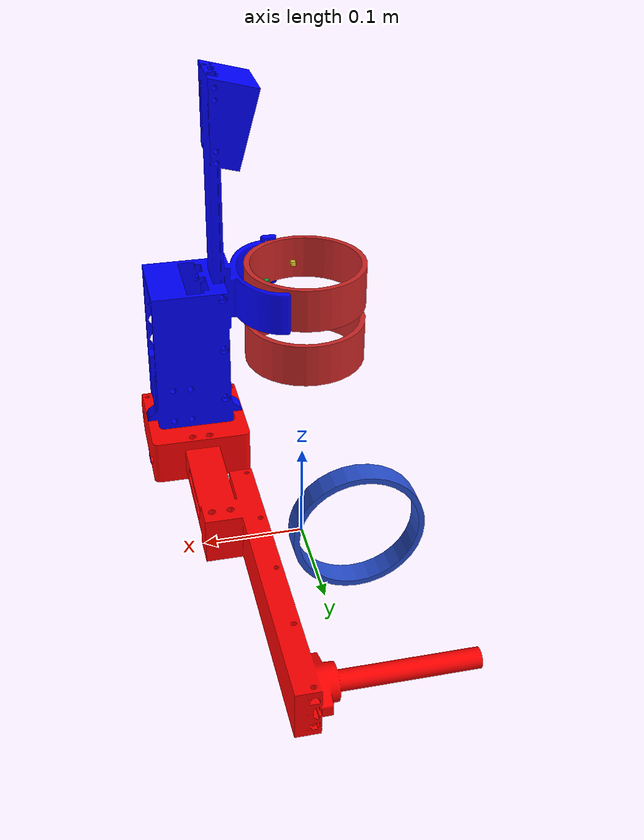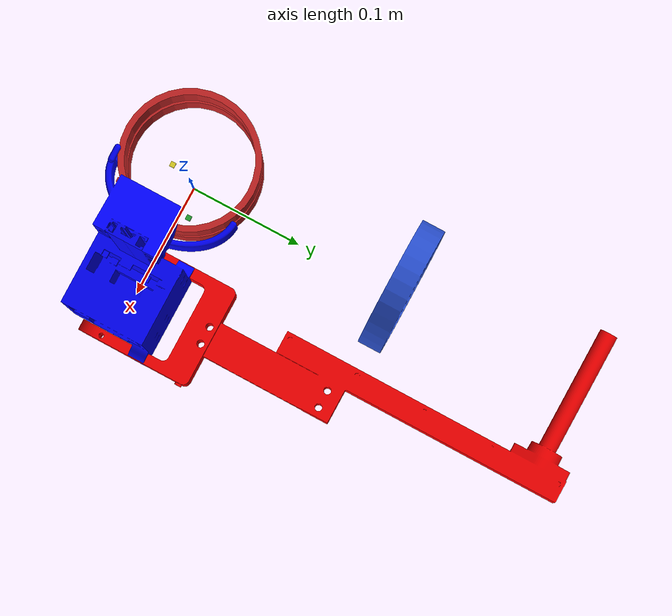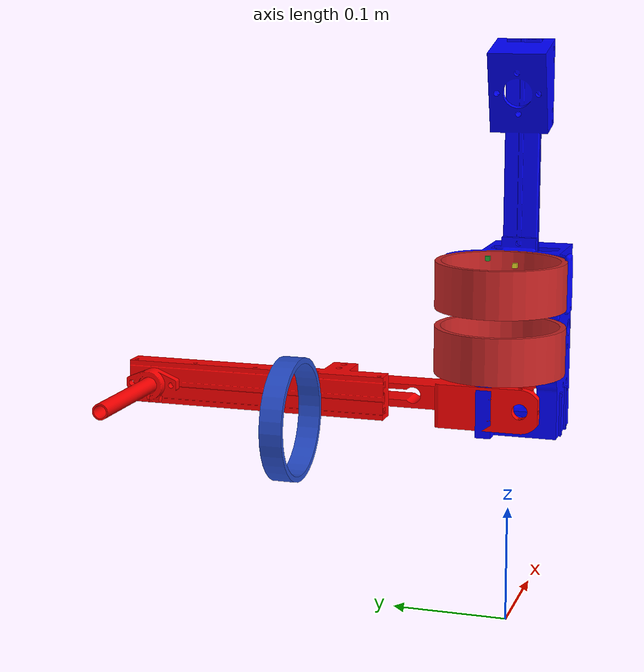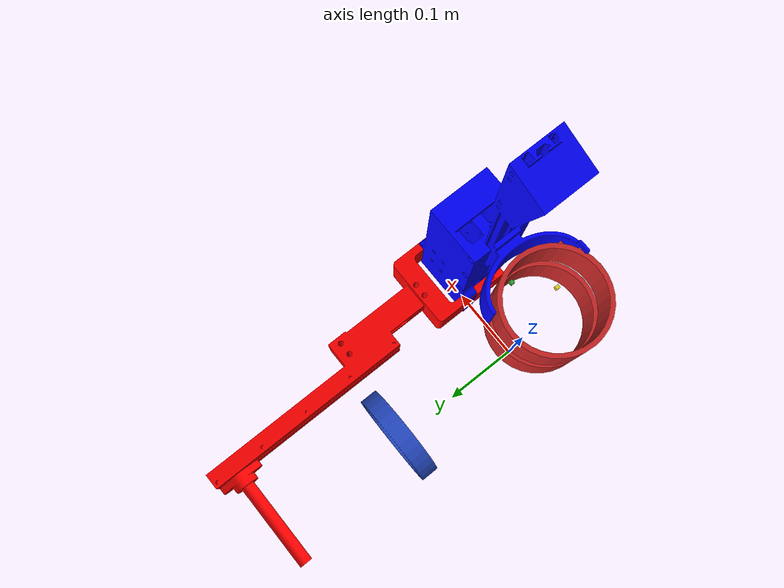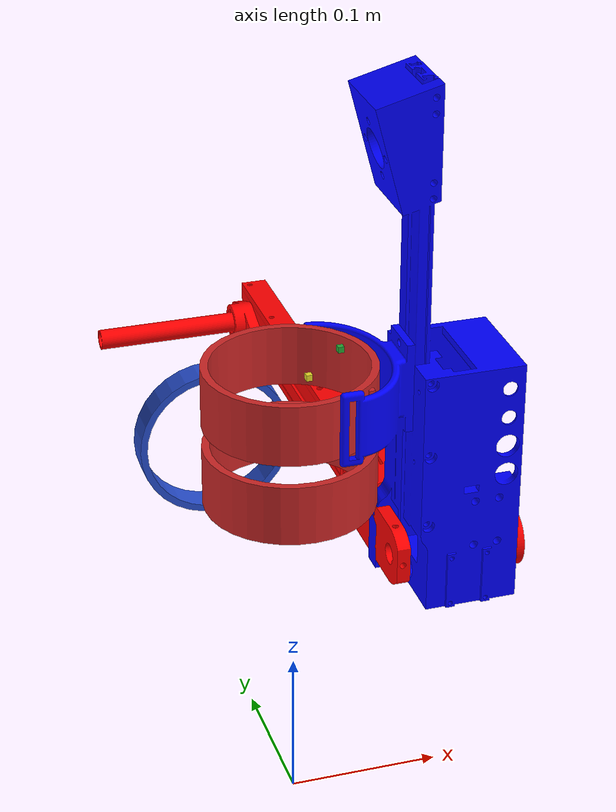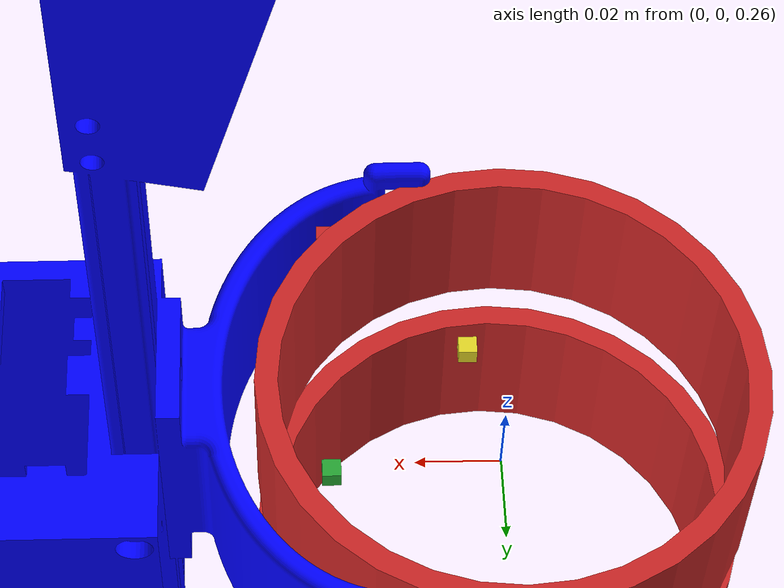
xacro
<?xml version="1.0"?>
<robot name="upper_limb" xmlns:xacro="http://www.ros.org/wiki/xacro">

  <!-- Import all Gazebo-customization elements, including Gazebo colors -->
  <xacro:include filename="$(find wearable_robot_description)/urdf/upper_limb.gazebo"/>
  <!-- Import Rviz colors -->
  <xacro:include filename="$(find wearable_robot_description)/urdf/materials.xacro"/>

    <link name="world"/>

    <joint name="fixed" type="fixed">
      <parent link="world"/>
      <child link="arm_link"/>
    </joint>

    <link name="arm_link">
      <visual>
        <geometry>
          <mesh filename="$(find wearable_robot_description)/meshes/upper_limb/arm_link.dae" scale="0.001 0.001 0.001"/>
        </geometry>
        <origin rpy="-3.141592 -1.570796 0" xyz="0.1 -0.05 0.00"/>
        <material name="blue">
          <color rgba="0 0 1 1"/>
        </material>
      </visual>
      <inertial>
        <mass value="0.1"/>
        <inertia ixx="1.0" ixy="0.0" ixz="0.0" iyy="1.0" iyz="0.0" izz="1.0"/>
      </inertial>
    </link>

    <joint name="arm_joint" type="revolute">
        <parent link="arm_link"/>
        <child link="forearm_link"/>
        <origin xyz="0 0 0.1575"/>
        <axis xyz="0 0 0" />
        <limit effort="500" velocity="100" lower="-4.1" upper="-1.570796"/>
        <dynamics damping="1" friction="1"/>
    </joint>

    <link name="forearm_link">
        <visual>
            <geometry>
                <mesh filename="$(find wearable_robot_description)/meshes/upper_limb/forearm_link.dae" scale="0.001 0.001 0.001"/>
            </geometry>
            <origin rpy="-1.570796 0 -1.570796" xyz="0.10 0.1575 -0.05"/>
            <material name="red">
                <color rgba="1 0 0 1"/>
            </material>
        </visual>
        <inertial>
            <mass value="0.1"/>
            <inertia ixx="1.0" ixy="0.0" ixz="0.0" iyy="1.0" iyz="0.0" izz="1.0"/>
        </inertial>
    </link>

    <joint name="forearm_band_link_fix_to_forearm_link" type="fixed">
      <origin xyz="0.0 0.22 0" rpy="0 1.570796 0"/>
      <parent link="forearm_link"/>
      <child link="forearm_band_link"/>
    </joint>

    <link name="forearm_band_link">
      <visual>
        <geometry>
          <mesh filename="$(find wearable_robot_description)/meshes/pipe.dae" scale="0.050 0.050 0.01"/>
        </geometry>
        <origin rpy="1.570796 1.570796 0" xyz="-0.0050 -0.025 0.0"/>
      </visual>
      <collision>
        <geometry>
          <mesh filename="$(find wearable_robot_description)/meshes/pipe.dae" scale="0.060 0.055 0.01"/>
        </geometry>
        <origin rpy="1.570796 1.570796 0" xyz="-0.0050 -0.025 0.0"/>
      </collision>

      <inertial>
        <mass value="0.001"/>
        <inertia ixx="1e-2" iyy="1e-2" izz="1e-2" ixy="0" ixz="0" iyz="0"/>
      </inertial>
    </link>

    <joint name="arm_band_link_to_arm_link" type="fixed">
      <origin xyz="0.05 -0.05 0.2875" rpy="0 0 1.570796"/>
      <axis xyz="0 0 0" />
      <parent link="arm_link"/>
      <child link="arm_band_link"/>
    </joint>

    <link name="arm_band_link">
      <visual>
        <geometry>
          <mesh filename="$(find wearable_robot_description)/meshes/pipe.dae" scale="0.05 0.05 0.02"/>
        </geometry>
          <!-- x up dir, y left dir, z is z dir -->
        <origin rpy="0 0 0" xyz="0.06 0.049 0.005"/>
      </visual>

      <collision>
        <geometry>
          <mesh filename="$(find wearable_robot_description)/meshes/pipe.dae" scale="0.045 0.045 0.02"/>
        </geometry>
        <origin rpy="0 0 0" xyz="0.06 0.049 0.005"/>
      </collision>

      <visual>
        <geometry>
          <mesh filename="$(find wearable_robot_description)/meshes/pipe.dae" scale="0.05 0.05 0.02"/>
        </geometry>
        <origin rpy="0 0 0" xyz="0.06 0.049 -0.05"/>
      </visual>

      <collision>
        <geometry>
          <mesh filename="$(find wearable_robot_description)/meshes/pipe.dae" scale="0.045 0.045 0.02"/>
        </geometry>
        <origin rpy="0 0 0" xyz="0.06 0.049 -0.05"/>
      </collision>

      <inertial>
        <mass value="0.001"/>
        <inertia ixx="1e-2" iyy="1e-2" izz="1e-2" ixy="0" ixz="0" iyz="0"/>
      </inertial>
    </link>

    <!-- band point -->
    <joint name="arm_band_point_1_to_arm_link" type="fixed">
      <origin xyz="0.05 -0.05 0.2875" rpy="0 0 1.570796"/>
      <axis xyz="0 0 0" />
      <parent link="arm_link"/>
      <child link="arm_band_point_1"/>
    </joint>

    <joint name="arm_band_point_2_to_arm_link" type="fixed">
      <origin xyz="0.05 -0.05 0.2875" rpy="0 0 1.570796"/>
      <axis xyz="0 0 0" />
      <parent link="arm_link"/>
      <child link="arm_band_point_2"/>
    </joint>

    <joint name="arm_band_point_3_to_arm_link" type="fixed">
      <origin xyz="0.05 -0.05 0.2875" rpy="0 0 1.570796"/>
      <axis xyz="0 0 0" />
      <parent link="arm_link"/>
      <child link="arm_band_point_3"/>
    </joint>

    <joint name="arm_band_point_4_to_arm_link" type="fixed">
      <origin xyz="0.05 -0.05 0.2875" rpy="0 0 1.570796"/>
      <axis xyz="0 0 0" />
      <parent link="arm_link"/>
      <child link="arm_band_point_4"/>
    </joint>

    <link name="arm_band_point_1">
      <visual>
        <geometry>
          <box size="0.004 0.004 0.004" />
        </geometry>
        <origin rpy="0 0 0" xyz="0.020 0.01 0.02"/>
      </visual>
    </link>

    <link name="arm_band_point_2">
      <visual>
        <geometry>
          <box size="0.004 0.004 0.004" />
        </geometry>
        <origin rpy="0 0 0" xyz="0.080 0.01 0.02"/>
      </visual>
    </link>

    <link name="arm_band_point_3">
      <visual>
        <geometry>
          <box size="0.004 0.004 0.004" />
        </geometry>
        <origin rpy="0 0 0" xyz="0.05 -0.020 0.02"/>
      </visual>
    </link>

    <link name="arm_band_point_4">
      <visual>
        <geometry>
          <box size="0.004 0.004 0.004" />
        </geometry>
        <origin rpy="0 0 0" xyz="0.05 0.040 0.02"/>
      </visual>
    </link>

  <ros2_control name="GazeboSystem" type="system">
    <hardware>
      <plugin>gazebo_ros2_control/GazeboSystem</plugin>
    </hardware>
    <joint name="arm_joint">
      <!-- DO NOT WITH EFFEORT COMMAND INTERFACE -->
      <command_interface name="effort">
        <param name="min">-300.0</param>
        <param name="max">+300.0</param>
      </command_interface>
      <state_interface name="position">
	      <param name="initial_value">1.570796</param>
      </state_interface>
      <state_interface name="velocity"/>
      <state_interface name="effort"/>
    </joint>
  </ros2_control>

</robot>
